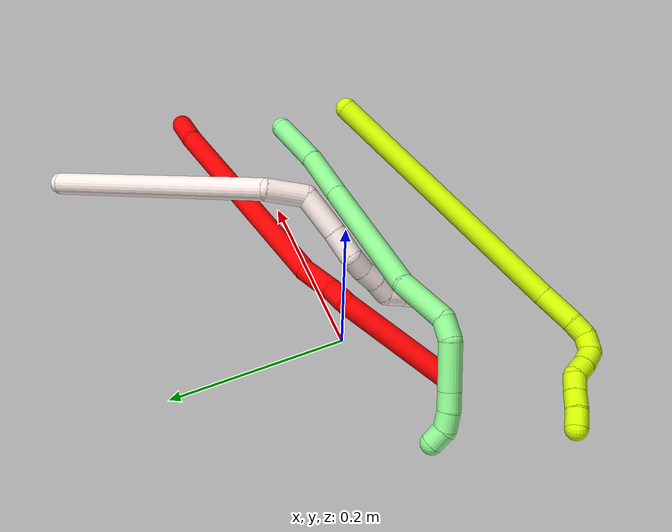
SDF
<sdf version="1.7">
 <world name="default">
  <model name="2">
   <static>0</static>
   <link name="2">
    <collision name="collision-cylinder-e_1_1_4">
     <pose>-0.007157 -0.010396 -0.017188 2.59763 -0.34228 -1.10957</pose>
     <geometry><cylinder><radius>0.0125</radius><length>0.042649</length></cylinder></geometry>
     <surface>
      <friction><ode><mu>1.16</mu><mu2>1.16</mu2><slip1>0</slip1><slip2>0</slip2></ode></friction>
      <contact><ode><kp>1e+06</kp><kd>1</kd><max_vel>0</max_vel><min_depth>0.001</min_depth></ode></contact>
     </surface>
    </collision>
    <visual name="visual-cylinder-e_1_1_4">
     <pose>-0.007157 -0.010396 -0.017188 2.59763 -0.34228 -1.10957</pose>
     <geometry><cylinder><radius>0.0125</radius><length>0.042649</length></cylinder></geometry>
     <material><ambient>1 0 0 1</ambient></material>
    </visual>
    <collision name="collision-cylinder-e_2_4_5">
     <pose>-0.084822 -0.04729 -0.132246 2.87718 -0.607624 -2.33927</pose>
     <geometry><cylinder><radius>0.0125</radius><length>0.246996</length></cylinder></geometry>
     <surface>
      <friction><ode><mu>1.16</mu><mu2>1.16</mu2><slip1>0</slip1><slip2>0</slip2></ode></friction>
      <contact><ode><kp>1e+06</kp><kd>1</kd><max_vel>0</max_vel><min_depth>0.001</min_depth></ode></contact>
     </surface>
    </collision>
    <visual name="visual-cylinder-e_2_4_5">
     <pose>-0.084822 -0.04729 -0.132246 2.87718 -0.607624 -2.33927</pose>
     <geometry><cylinder><radius>0.0125</radius><length>0.246996</length></cylinder></geometry>
     <material><ambient>1 0 0 1</ambient></material>
    </visual>
    <collision name="collision-cylinder-e_3_5_6">
     <pose>-0.163939 -0.078434 -0.251462 2.92735 -0.375393 -2.11127</pose>
     <geometry><cylinder><radius>0.0125</radius><length>0.046964</length></cylinder></geometry>
     <surface>
      <friction><ode><mu>1.16</mu><mu2>1.16</mu2><slip1>0</slip1><slip2>0</slip2></ode></friction>
      <contact><ode><kp>1e+06</kp><kd>1</kd><max_vel>0</max_vel><min_depth>0.001</min_depth></ode></contact>
     </surface>
    </collision>
    <visual name="visual-cylinder-e_3_5_6">
     <pose>-0.163939 -0.078434 -0.251462 2.92735 -0.375393 -2.11127</pose>
     <geometry><cylinder><radius>0.0125</radius><length>0.046964</length></cylinder></geometry>
     <material><ambient>1 0 0 1</ambient></material>
    </visual>
    <collision name="collision-cylinder-e_4_6_7">
     <pose>-0.177444 -0.088381 -0.285837 2.75499 -0.334954 -1.42477</pose>
     <geometry><cylinder><radius>0.0125</radius><length>0.029786</length></cylinder></geometry>
     <surface>
      <friction><ode><mu>1.16</mu><mu2>1.16</mu2><slip1>0</slip1><slip2>0</slip2></ode></friction>
      <contact><ode><kp>1e+06</kp><kd>1</kd><max_vel>0</max_vel><min_depth>0.001</min_depth></ode></contact>
     </surface>
    </collision>
    <visual name="visual-cylinder-e_4_6_7">
     <pose>-0.177444 -0.088381 -0.285837 2.75499 -0.334954 -1.42477</pose>
     <geometry><cylinder><radius>0.0125</radius><length>0.029786</length></cylinder></geometry>
     <material><ambient>1 0 0 1</ambient></material>
    </visual>
    <collision name="collision-cylinder-e_5_7_2">
     <pose>-0.224395 -0.081312 -0.349271 -2.90089 -0.680967 2.4837</pose>
     <geometry><cylinder><radius>0.0125</radius><length>0.133604</length></cylinder></geometry>
     <surface>
      <friction><ode><mu>1.16</mu><mu2>1.16</mu2><slip1>0</slip1><slip2>0</slip2></ode></friction>
      <contact><ode><kp>1e+06</kp><kd>1</kd><max_vel>0</max_vel><min_depth>0.001</min_depth></ode></contact>
     </surface>
    </collision>
    <visual name="visual-cylinder-e_5_7_2">
     <pose>-0.224395 -0.081312 -0.349271 -2.90089 -0.680967 2.4837</pose>
     <geometry><cylinder><radius>0.0125</radius><length>0.133604</length></cylinder></geometry>
     <material><ambient>1 0 0 1</ambient></material>
    </visual>
    <collision name="collision-sphere-2">
     <pose>-0.266449 -0.068939 -0.399677 0 -0 0</pose>
     <geometry><sphere><radius>0.0125</radius></sphere></geometry>
     <surface>
      <friction><ode><mu>1.16</mu><mu2>1.16</mu2><slip1>0</slip1><slip2>0</slip2></ode></friction>
      <contact><ode><kp>1e+06</kp><kd>1</kd><max_vel>0</max_vel><min_depth>0.001</min_depth></ode></contact>
     </surface>
    </collision>
    <visual name="visual-sphere-2">
     <pose>-0.266449 -0.068939 -0.399677 0 -0 0</pose>
     <geometry><sphere><radius>0.0125</radius></sphere></geometry>
     <material><ambient>1 0 0 1</ambient></material>
    </visual>
    <collision name="collision-sphere-7">
     <pose>-0.18234 -0.093685 -0.298864 0 -0 0</pose>
     <geometry><sphere><radius>0.0125</radius></sphere></geometry>
     <surface>
      <friction><ode><mu>1.16</mu><mu2>1.16</mu2><slip1>0</slip1><slip2>0</slip2></ode></friction>
      <contact><ode><kp>1e+06</kp><kd>1</kd><max_vel>0</max_vel><min_depth>0.001</min_depth></ode></contact>
     </surface>
    </collision>
    <visual name="visual-sphere-7">
     <pose>-0.18234 -0.093685 -0.298864 0 -0 0</pose>
     <geometry><sphere><radius>0.0125</radius></sphere></geometry>
     <material><ambient>1 0 0 1</ambient></material>
    </visual>
    <collision name="collision-sphere-6">
     <pose>-0.172548 -0.083078 -0.27281 0 -0 0</pose>
     <geometry><sphere><radius>0.0125</radius></sphere></geometry>
     <surface>
      <friction><ode><mu>1.16</mu><mu2>1.16</mu2><slip1>0</slip1><slip2>0</slip2></ode></friction>
      <contact><ode><kp>1e+06</kp><kd>1</kd><max_vel>0</max_vel><min_depth>0.001</min_depth></ode></contact>
     </surface>
    </collision>
    <visual name="visual-sphere-6">
     <pose>-0.172548 -0.083078 -0.27281 0 -0 0</pose>
     <geometry><sphere><radius>0.0125</radius></sphere></geometry>
     <material><ambient>1 0 0 1</ambient></material>
    </visual>
    <collision name="collision-sphere-5">
     <pose>-0.15533 -0.073789 -0.230115 0 -0 0</pose>
     <geometry><sphere><radius>0.0125</radius></sphere></geometry>
     <surface>
      <friction><ode><mu>1.16</mu><mu2>1.16</mu2><slip1>0</slip1><slip2>0</slip2></ode></friction>
      <contact><ode><kp>1e+06</kp><kd>1</kd><max_vel>0</max_vel><min_depth>0.001</min_depth></ode></contact>
     </surface>
    </collision>
    <visual name="visual-sphere-5">
     <pose>-0.15533 -0.073789 -0.230115 0 -0 0</pose>
     <geometry><sphere><radius>0.0125</radius></sphere></geometry>
     <material><ambient>1 0 0 1</ambient></material>
    </visual>
    <collision name="collision-sphere-1">
     <geometry><sphere><radius>0.0125</radius></sphere></geometry>
     <surface>
      <friction><ode><mu>1.16</mu><mu2>1.16</mu2><slip1>0</slip1><slip2>0</slip2></ode></friction>
      <contact><ode><kp>1e+06</kp><kd>1</kd><max_vel>0</max_vel><min_depth>0.001</min_depth></ode></contact>
     </surface>
    </collision>
    <visual name="visual-sphere-1">
     <geometry><sphere><radius>0.0125</radius></sphere></geometry>
     <material><ambient>1 0 0 1</ambient></material>
    </visual>
    <collision name="collision-sphere-4">
     <pose>-0.014315 -0.020792 -0.034377 0 -0 0</pose>
     <geometry><sphere><radius>0.0125</radius></sphere></geometry>
     <surface>
      <friction><ode><mu>1.16</mu><mu2>1.16</mu2><slip1>0</slip1><slip2>0</slip2></ode></friction>
      <contact><ode><kp>1e+06</kp><kd>1</kd><max_vel>0</max_vel><min_depth>0.001</min_depth></ode></contact>
     </surface>
    </collision>
    <visual name="visual-sphere-4">
     <pose>-0.014315 -0.020792 -0.034377 0 -0 0</pose>
     <geometry><sphere><radius>0.0125</radius></sphere></geometry>
     <material><ambient>1 0 0 1</ambient></material>
    </visual>
    <inertial>
     <pose>-0.128441 -0.058607 -0.20077 0 -0 0</pose>
     <mass>0.5</mass>
     <inertia>
      <ixx>-0.001538</ixx>
      <ixy>0</ixy>
      <ixz>0</ixz>
      <iyy>0.00049</iyy>
      <iyz>0</iyz>
      <izz>0.001068</izz>
     </inertia>
    </inertial>
   </link>
   <pose>0.369755 0.067125 0.011614 -2.41685 -0.912329 -0.140713</pose>
  </model>
  <model name="11">
   <static>0</static>
   <link name="11">
    <collision name="collision-cylinder-e_1_1_4">
     <pose>-0.102135 -0.060394 0.067195 0.73215 -0.846562 -0.342039</pose>
     <geometry><cylinder><radius>0.0125</radius><length>0.27272</length></cylinder></geometry>
     <surface>
      <friction><ode><mu>1.16</mu><mu2>1.16</mu2><slip1>0</slip1><slip2>0</slip2></ode></friction>
      <contact><ode><kp>1e+06</kp><kd>1</kd><max_vel>0</max_vel><min_depth>0.001</min_depth></ode></contact>
     </surface>
    </collision>
    <visual name="visual-cylinder-e_1_1_4">
     <pose>-0.102135 -0.060394 0.067195 0.73215 -0.846562 -0.342039</pose>
     <geometry><cylinder><radius>0.0125</radius><length>0.27272</length></cylinder></geometry>
     <material><ambient>1 0.933333 0.909804 1</ambient></material>
    </visual>
    <collision name="collision-cylinder-e_2_4_5">
     <pose>-0.222437 -0.133238 0.13227 1.73935 -0.963361 -1.10887</pose>
     <geometry><cylinder><radius>0.0125</radius><length>0.04425</length></cylinder></geometry>
     <surface>
      <friction><ode><mu>1.16</mu><mu2>1.16</mu2><slip1>0</slip1><slip2>0</slip2></ode></friction>
      <contact><ode><kp>1e+06</kp><kd>1</kd><max_vel>0</max_vel><min_depth>0.001</min_depth></ode></contact>
     </surface>
    </collision>
    <visual name="visual-cylinder-e_2_4_5">
     <pose>-0.222437 -0.133238 0.13227 1.73935 -0.963361 -1.10887</pose>
     <geometry><cylinder><radius>0.0125</radius><length>0.04425</length></cylinder></geometry>
     <material><ambient>1 0.933333 0.909804 1</ambient></material>
    </visual>
    <collision name="collision-cylinder-e_3_5_6">
     <pose>-0.264361 -0.141187 0.128052 -2.00749 -1.36474 1.81216</pose>
     <geometry><cylinder><radius>0.0125</radius><length>0.048541</length></cylinder></geometry>
     <surface>
      <friction><ode><mu>1.16</mu><mu2>1.16</mu2><slip1>0</slip1><slip2>0</slip2></ode></friction>
      <contact><ode><kp>1e+06</kp><kd>1</kd><max_vel>0</max_vel><min_depth>0.001</min_depth></ode></contact>
     </surface>
    </collision>
    <visual name="visual-cylinder-e_3_5_6">
     <pose>-0.264361 -0.141187 0.128052 -2.00749 -1.36474 1.81216</pose>
     <geometry><cylinder><radius>0.0125</radius><length>0.048541</length></cylinder></geometry>
     <material><ambient>1 0.933333 0.909804 1</ambient></material>
    </visual>
    <collision name="collision-cylinder-e_4_6_7">
     <pose>-0.303215 -0.13287 0.12465 -1.8994 -1.30974 1.64134</pose>
     <geometry><cylinder><radius>0.0125</radius><length>0.031253</length></cylinder></geometry>
     <surface>
      <friction><ode><mu>1.16</mu><mu2>1.16</mu2><slip1>0</slip1><slip2>0</slip2></ode></friction>
      <contact><ode><kp>1e+06</kp><kd>1</kd><max_vel>0</max_vel><min_depth>0.001</min_depth></ode></contact>
     </surface>
    </collision>
    <visual name="visual-cylinder-e_4_6_7">
     <pose>-0.303215 -0.13287 0.12465 -1.8994 -1.30974 1.64134</pose>
     <geometry><cylinder><radius>0.0125</radius><length>0.031253</length></cylinder></geometry>
     <material><ambient>1 0.933333 0.909804 1</ambient></material>
    </visual>
    <collision name="collision-cylinder-e_5_7_8">
     <pose>-0.327435 -0.129065 0.117153 3.13969 -0.974243 -3.138</pose>
     <geometry><cylinder><radius>0.0125</radius><length>0.022055</length></cylinder></geometry>
     <surface>
      <friction><ode><mu>1.16</mu><mu2>1.16</mu2><slip1>0</slip1><slip2>0</slip2></ode></friction>
      <contact><ode><kp>1e+06</kp><kd>1</kd><max_vel>0</max_vel><min_depth>0.001</min_depth></ode></contact>
     </surface>
    </collision>
    <visual name="visual-cylinder-e_5_7_8">
     <pose>-0.327435 -0.129065 0.117153 3.13969 -0.974243 -3.138</pose>
     <geometry><cylinder><radius>0.0125</radius><length>0.022055</length></cylinder></geometry>
     <material><ambient>1 0.933333 0.909804 1</ambient></material>
    </visual>
    <collision name="collision-cylinder-e_6_8_9">
     <pose>-0.345642 -0.130373 0.105875 2.89189 -1.04716 -2.71347</pose>
     <geometry><cylinder><radius>0.0125</radius><length>0.02098</length></cylinder></geometry>
     <surface>
      <friction><ode><mu>1.16</mu><mu2>1.16</mu2><slip1>0</slip1><slip2>0</slip2></ode></friction>
      <contact><ode><kp>1e+06</kp><kd>1</kd><max_vel>0</max_vel><min_depth>0.001</min_depth></ode></contact>
     </surface>
    </collision>
    <visual name="visual-cylinder-e_6_8_9">
     <pose>-0.345642 -0.130373 0.105875 2.89189 -1.04716 -2.71347</pose>
     <geometry><cylinder><radius>0.0125</radius><length>0.02098</length></cylinder></geometry>
     <material><ambient>1 0.933333 0.909804 1</ambient></material>
    </visual>
    <collision name="collision-cylinder-e_7_9_10">
     <pose>-0.363211 -0.131754 0.095454 3.12561 -1.00912 -3.11264</pose>
     <geometry><cylinder><radius>0.0125</radius><length>0.020051</length></cylinder></geometry>
     <surface>
      <friction><ode><mu>1.16</mu><mu2>1.16</mu2><slip1>0</slip1><slip2>0</slip2></ode></friction>
      <contact><ode><kp>1e+06</kp><kd>1</kd><max_vel>0</max_vel><min_depth>0.001</min_depth></ode></contact>
     </surface>
    </collision>
    <visual name="visual-cylinder-e_7_9_10">
     <pose>-0.363211 -0.131754 0.095454 3.12561 -1.00912 -3.11264</pose>
     <geometry><cylinder><radius>0.0125</radius><length>0.020051</length></cylinder></geometry>
     <material><ambient>1 0.933333 0.909804 1</ambient></material>
    </visual>
    <collision name="collision-cylinder-e_8_10_11">
     <pose>-0.378939 -0.138215 0.087313 1.98492 -0.804951 -1.15576</pose>
     <geometry><cylinder><radius>0.0125</radius><length>0.020096</length></cylinder></geometry>
     <surface>
      <friction><ode><mu>1.16</mu><mu2>1.16</mu2><slip1>0</slip1><slip2>0</slip2></ode></friction>
      <contact><ode><kp>1e+06</kp><kd>1</kd><max_vel>0</max_vel><min_depth>0.001</min_depth></ode></contact>
     </surface>
    </collision>
    <visual name="visual-cylinder-e_8_10_11">
     <pose>-0.378939 -0.138215 0.087313 1.98492 -0.804951 -1.15576</pose>
     <geometry><cylinder><radius>0.0125</radius><length>0.020096</length></cylinder></geometry>
     <material><ambient>1 0.933333 0.909804 1</ambient></material>
    </visual>
    <collision name="collision-cylinder-e_9_11_2">
     <pose>-0.393424 -0.150669 0.08117 2.0733 -0.807065 -1.25046</pose>
     <geometry><cylinder><radius>0.0125</radius><length>0.020054</length></cylinder></geometry>
     <surface>
      <friction><ode><mu>1.16</mu><mu2>1.16</mu2><slip1>0</slip1><slip2>0</slip2></ode></friction>
      <contact><ode><kp>1e+06</kp><kd>1</kd><max_vel>0</max_vel><min_depth>0.001</min_depth></ode></contact>
     </surface>
    </collision>
    <visual name="visual-cylinder-e_9_11_2">
     <pose>-0.393424 -0.150669 0.08117 2.0733 -0.807065 -1.25046</pose>
     <geometry><cylinder><radius>0.0125</radius><length>0.020054</length></cylinder></geometry>
     <material><ambient>1 0.933333 0.909804 1</ambient></material>
    </visual>
    <collision name="collision-sphere-2">
     <pose>-0.400666 -0.156747 0.07783 0 -0 0</pose>
     <geometry><sphere><radius>0.0125</radius></sphere></geometry>
     <surface>
      <friction><ode><mu>1.16</mu><mu2>1.16</mu2><slip1>0</slip1><slip2>0</slip2></ode></friction>
      <contact><ode><kp>1e+06</kp><kd>1</kd><max_vel>0</max_vel><min_depth>0.001</min_depth></ode></contact>
     </surface>
    </collision>
    <visual name="visual-sphere-2">
     <pose>-0.400666 -0.156747 0.07783 0 -0 0</pose>
     <geometry><sphere><radius>0.0125</radius></sphere></geometry>
     <material><ambient>1 0.933333 0.909804 1</ambient></material>
    </visual>
    <collision name="collision-sphere-11">
     <pose>-0.386181 -0.144591 0.08451 0 -0 0</pose>
     <geometry><sphere><radius>0.0125</radius></sphere></geometry>
     <surface>
      <friction><ode><mu>1.16</mu><mu2>1.16</mu2><slip1>0</slip1><slip2>0</slip2></ode></friction>
      <contact><ode><kp>1e+06</kp><kd>1</kd><max_vel>0</max_vel><min_depth>0.001</min_depth></ode></contact>
     </surface>
    </collision>
    <visual name="visual-sphere-11">
     <pose>-0.386181 -0.144591 0.08451 0 -0 0</pose>
     <geometry><sphere><radius>0.0125</radius></sphere></geometry>
     <material><ambient>1 0.933333 0.909804 1</ambient></material>
    </visual>
    <collision name="collision-sphere-10">
     <pose>-0.371696 -0.131839 0.090115 0 -0 0</pose>
     <geometry><sphere><radius>0.0125</radius></sphere></geometry>
     <surface>
      <friction><ode><mu>1.16</mu><mu2>1.16</mu2><slip1>0</slip1><slip2>0</slip2></ode></friction>
      <contact><ode><kp>1e+06</kp><kd>1</kd><max_vel>0</max_vel><min_depth>0.001</min_depth></ode></contact>
     </surface>
    </collision>
    <visual name="visual-sphere-10">
     <pose>-0.371696 -0.131839 0.090115 0 -0 0</pose>
     <geometry><sphere><radius>0.0125</radius></sphere></geometry>
     <material><ambient>1 0.933333 0.909804 1</ambient></material>
    </visual>
    <collision name="collision-sphere-9">
     <pose>-0.354726 -0.131669 0.100793 0 -0 0</pose>
     <geometry><sphere><radius>0.0125</radius></sphere></geometry>
     <surface>
      <friction><ode><mu>1.16</mu><mu2>1.16</mu2><slip1>0</slip1><slip2>0</slip2></ode></friction>
      <contact><ode><kp>1e+06</kp><kd>1</kd><max_vel>0</max_vel><min_depth>0.001</min_depth></ode></contact>
     </surface>
    </collision>
    <visual name="visual-sphere-9">
     <pose>-0.354726 -0.131669 0.100793 0 -0 0</pose>
     <geometry><sphere><radius>0.0125</radius></sphere></geometry>
     <material><ambient>1 0.933333 0.909804 1</ambient></material>
    </visual>
    <collision name="collision-sphere-4">
     <pose>-0.204269 -0.120789 0.134389 0 -0 0</pose>
     <geometry><sphere><radius>0.0125</radius></sphere></geometry>
     <surface>
      <friction><ode><mu>1.16</mu><mu2>1.16</mu2><slip1>0</slip1><slip2>0</slip2></ode></friction>
      <contact><ode><kp>1e+06</kp><kd>1</kd><max_vel>0</max_vel><min_depth>0.001</min_depth></ode></contact>
     </surface>
    </collision>
    <visual name="visual-sphere-4">
     <pose>-0.204269 -0.120789 0.134389 0 -0 0</pose>
     <geometry><sphere><radius>0.0125</radius></sphere></geometry>
     <material><ambient>1 0.933333 0.909804 1</ambient></material>
    </visual>
    <collision name="collision-sphere-1">
     <geometry><sphere><radius>0.0125</radius></sphere></geometry>
     <surface>
      <friction><ode><mu>1.16</mu><mu2>1.16</mu2><slip1>0</slip1><slip2>0</slip2></ode></friction>
      <contact><ode><kp>1e+06</kp><kd>1</kd><max_vel>0</max_vel><min_depth>0.001</min_depth></ode></contact>
     </surface>
    </collision>
    <visual name="visual-sphere-1">
     <geometry><sphere><radius>0.0125</radius></sphere></geometry>
     <material><ambient>1 0.933333 0.909804 1</ambient></material>
    </visual>
    <collision name="collision-sphere-8">
     <pose>-0.336557 -0.129076 0.110958 0 -0 0</pose>
     <geometry><sphere><radius>0.0125</radius></sphere></geometry>
     <surface>
      <friction><ode><mu>1.16</mu><mu2>1.16</mu2><slip1>0</slip1><slip2>0</slip2></ode></friction>
      <contact><ode><kp>1e+06</kp><kd>1</kd><max_vel>0</max_vel><min_depth>0.001</min_depth></ode></contact>
     </surface>
    </collision>
    <visual name="visual-sphere-8">
     <pose>-0.336557 -0.129076 0.110958 0 -0 0</pose>
     <geometry><sphere><radius>0.0125</radius></sphere></geometry>
     <material><ambient>1 0.933333 0.909804 1</ambient></material>
    </visual>
    <collision name="collision-sphere-5">
     <pose>-0.240604 -0.145687 0.130152 0 -0 0</pose>
     <geometry><sphere><radius>0.0125</radius></sphere></geometry>
     <surface>
      <friction><ode><mu>1.16</mu><mu2>1.16</mu2><slip1>0</slip1><slip2>0</slip2></ode></friction>
      <contact><ode><kp>1e+06</kp><kd>1</kd><max_vel>0</max_vel><min_depth>0.001</min_depth></ode></contact>
     </surface>
    </collision>
    <visual name="visual-sphere-5">
     <pose>-0.240604 -0.145687 0.130152 0 -0 0</pose>
     <geometry><sphere><radius>0.0125</radius></sphere></geometry>
     <material><ambient>1 0.933333 0.909804 1</ambient></material>
    </visual>
    <collision name="collision-sphere-6">
     <pose>-0.288118 -0.136688 0.125952 0 -0 0</pose>
     <geometry><sphere><radius>0.0125</radius></sphere></geometry>
     <surface>
      <friction><ode><mu>1.16</mu><mu2>1.16</mu2><slip1>0</slip1><slip2>0</slip2></ode></friction>
      <contact><ode><kp>1e+06</kp><kd>1</kd><max_vel>0</max_vel><min_depth>0.001</min_depth></ode></contact>
     </surface>
    </collision>
    <visual name="visual-sphere-6">
     <pose>-0.288118 -0.136688 0.125952 0 -0 0</pose>
     <geometry><sphere><radius>0.0125</radius></sphere></geometry>
     <material><ambient>1 0.933333 0.909804 1</ambient></material>
    </visual>
    <collision name="collision-sphere-7">
     <pose>-0.318312 -0.129053 0.123348 0 -0 0</pose>
     <geometry><sphere><radius>0.0125</radius></sphere></geometry>
     <surface>
      <friction><ode><mu>1.16</mu><mu2>1.16</mu2><slip1>0</slip1><slip2>0</slip2></ode></friction>
      <contact><ode><kp>1e+06</kp><kd>1</kd><max_vel>0</max_vel><min_depth>0.001</min_depth></ode></contact>
     </surface>
    </collision>
    <visual name="visual-sphere-7">
     <pose>-0.318312 -0.129053 0.123348 0 -0 0</pose>
     <geometry><sphere><radius>0.0125</radius></sphere></geometry>
     <material><ambient>1 0.933333 0.909804 1</ambient></material>
    </visual>
    <inertial>
     <pose>-0.194533 -0.09479 0.088782 0 -0 0</pose>
     <mass>0.5</mass>
     <inertia>
      <ixx>0.000649</ixx>
      <ixy>0</ixy>
      <ixz>0</ixz>
      <iyy>0.00111</iyy>
      <iyz>0</iyz>
      <izz>0.002066</izz>
     </inertia>
    </inertial>
   </link>
   <pose>0.289945 0.235721 0.056816 -0.256229 -0.326474 0.537629</pose>
  </model>
  <model name="13">
   <static>0</static>
   <link name="13">
    <collision name="collision-cylinder-e_1_1_4">
     <pose>-0.030874 -0.007097 -0.016965 2.74538 -1.0336 -2.46251</pose>
     <geometry><cylinder><radius>0.0125</radius><length>0.071872</length></cylinder></geometry>
     <surface>
      <friction><ode><mu>1.16</mu><mu2>1.16</mu2><slip1>0</slip1><slip2>0</slip2></ode></friction>
      <contact><ode><kp>1e+06</kp><kd>1</kd><max_vel>0</max_vel><min_depth>0.001</min_depth></ode></contact>
     </surface>
    </collision>
    <visual name="visual-cylinder-e_1_1_4">
     <pose>-0.030874 -0.007097 -0.016965 2.74538 -1.0336 -2.46251</pose>
     <geometry><cylinder><radius>0.0125</radius><length>0.071872</length></cylinder></geometry>
     <material><ambient>0.564706 0.984314 0.572549 1</ambient></material>
    </visual>
    <collision name="collision-cylinder-e_2_4_5">
     <pose>-0.090274 -0.017324 -0.051392 2.96424 -1.01442 -2.82429</pose>
     <geometry><cylinder><radius>0.0125</radius><length>0.067185</length></cylinder></geometry>
     <surface>
      <friction><ode><mu>1.16</mu><mu2>1.16</mu2><slip1>0</slip1><slip2>0</slip2></ode></friction>
      <contact><ode><kp>1e+06</kp><kd>1</kd><max_vel>0</max_vel><min_depth>0.001</min_depth></ode></contact>
     </surface>
    </collision>
    <visual name="visual-cylinder-e_2_4_5">
     <pose>-0.090274 -0.017324 -0.051392 2.96424 -1.01442 -2.82429</pose>
     <geometry><cylinder><radius>0.0125</radius><length>0.067185</length></cylinder></geometry>
     <material><ambient>0.564706 0.984314 0.572549 1</ambient></material>
    </visual>
    <collision name="collision-cylinder-e_3_5_6">
     <pose>-0.190631 -0.025504 -0.107209 3.01067 -1.07677 -2.92295</pose>
     <geometry><cylinder><radius>0.0125</radius><length>0.163172</length></cylinder></geometry>
     <surface>
      <friction><ode><mu>1.16</mu><mu2>1.16</mu2><slip1>0</slip1><slip2>0</slip2></ode></friction>
      <contact><ode><kp>1e+06</kp><kd>1</kd><max_vel>0</max_vel><min_depth>0.001</min_depth></ode></contact>
     </surface>
    </collision>
    <visual name="visual-cylinder-e_3_5_6">
     <pose>-0.190631 -0.025504 -0.107209 3.01067 -1.07677 -2.92295</pose>
     <geometry><cylinder><radius>0.0125</radius><length>0.163172</length></cylinder></geometry>
     <material><ambient>0.564706 0.984314 0.572549 1</ambient></material>
    </visual>
    <collision name="collision-cylinder-e_4_6_7">
     <pose>-0.287568 -0.040756 -0.159703 2.51657 -0.963763 -2.03483</pose>
     <geometry><cylinder><radius>0.0125</radius><length>0.061132</length></cylinder></geometry>
     <surface>
      <friction><ode><mu>1.16</mu><mu2>1.16</mu2><slip1>0</slip1><slip2>0</slip2></ode></friction>
      <contact><ode><kp>1e+06</kp><kd>1</kd><max_vel>0</max_vel><min_depth>0.001</min_depth></ode></contact>
     </surface>
    </collision>
    <visual name="visual-cylinder-e_4_6_7">
     <pose>-0.287568 -0.040756 -0.159703 2.51657 -0.963763 -2.03483</pose>
     <geometry><cylinder><radius>0.0125</radius><length>0.061132</length></cylinder></geometry>
     <material><ambient>0.564706 0.984314 0.572549 1</ambient></material>
    </visual>
    <collision name="collision-cylinder-e_5_7_8">
     <pose>-0.319569 -0.051054 -0.183632 3.13187 -0.613716 -3.11091</pose>
     <geometry><cylinder><radius>0.0125</radius><length>0.023951</length></cylinder></geometry>
     <surface>
      <friction><ode><mu>1.16</mu><mu2>1.16</mu2><slip1>0</slip1><slip2>0</slip2></ode></friction>
      <contact><ode><kp>1e+06</kp><kd>1</kd><max_vel>0</max_vel><min_depth>0.001</min_depth></ode></contact>
     </surface>
    </collision>
    <visual name="visual-cylinder-e_5_7_8">
     <pose>-0.319569 -0.051054 -0.183632 3.13187 -0.613716 -3.11091</pose>
     <geometry><cylinder><radius>0.0125</radius><length>0.023951</length></cylinder></geometry>
     <material><ambient>0.564706 0.984314 0.572549 1</ambient></material>
    </visual>
    <collision name="collision-cylinder-e_6_8_9">
     <pose>-0.328624 -0.049464 -0.219126 -3.07614 -0.083561 1.81288</pose>
     <geometry><cylinder><radius>0.0125</radius><length>0.051699</length></cylinder></geometry>
     <surface>
      <friction><ode><mu>1.16</mu><mu2>1.16</mu2><slip1>0</slip1><slip2>0</slip2></ode></friction>
      <contact><ode><kp>1e+06</kp><kd>1</kd><max_vel>0</max_vel><min_depth>0.001</min_depth></ode></contact>
     </surface>
    </collision>
    <visual name="visual-cylinder-e_6_8_9">
     <pose>-0.328624 -0.049464 -0.219126 -3.07614 -0.083561 1.81288</pose>
     <geometry><cylinder><radius>0.0125</radius><length>0.051699</length></cylinder></geometry>
     <material><ambient>0.564706 0.984314 0.572549 1</ambient></material>
    </visual>
    <collision name="collision-cylinder-e_7_9_10">
     <pose>-0.332013 -0.046848 -0.255118 -3.05133 -0.118652 1.84138</pose>
     <geometry><cylinder><radius>0.0125</radius><length>0.020806</length></cylinder></geometry>
     <surface>
      <friction><ode><mu>1.16</mu><mu2>1.16</mu2><slip1>0</slip1><slip2>0</slip2></ode></friction>
      <contact><ode><kp>1e+06</kp><kd>1</kd><max_vel>0</max_vel><min_depth>0.001</min_depth></ode></contact>
     </surface>
    </collision>
    <visual name="visual-cylinder-e_7_9_10">
     <pose>-0.332013 -0.046848 -0.255118 -3.05133 -0.118652 1.84138</pose>
     <geometry><cylinder><radius>0.0125</radius><length>0.020806</length></cylinder></geometry>
     <material><ambient>0.564706 0.984314 0.572549 1</ambient></material>
    </visual>
    <collision name="collision-cylinder-e_8_10_11">
     <pose>-0.332971 -0.043776 -0.27521 -2.92657 0.027192 -0.250645</pose>
     <geometry><cylinder><radius>0.0125</radius><length>0.020078</length></cylinder></geometry>
     <surface>
      <friction><ode><mu>1.16</mu><mu2>1.16</mu2><slip1>0</slip1><slip2>0</slip2></ode></friction>
      <contact><ode><kp>1e+06</kp><kd>1</kd><max_vel>0</max_vel><min_depth>0.001</min_depth></ode></contact>
     </surface>
    </collision>
    <visual name="visual-cylinder-e_8_10_11">
     <pose>-0.332971 -0.043776 -0.27521 -2.92657 0.027192 -0.250645</pose>
     <geometry><cylinder><radius>0.0125</radius><length>0.020078</length></cylinder></geometry>
     <material><ambient>0.564706 0.984314 0.572549 1</ambient></material>
    </visual>
    <collision name="collision-cylinder-e_9_11_2">
     <pose>-0.328898 -0.036262 -0.292614 -2.52624 0.387716 -1.10685</pose>
     <geometry><cylinder><radius>0.0125</radius><length>0.020105</length></cylinder></geometry>
     <surface>
      <friction><ode><mu>1.16</mu><mu2>1.16</mu2><slip1>0</slip1><slip2>0</slip2></ode></friction>
      <contact><ode><kp>1e+06</kp><kd>1</kd><max_vel>0</max_vel><min_depth>0.001</min_depth></ode></contact>
     </surface>
    </collision>
    <visual name="visual-cylinder-e_9_11_2">
     <pose>-0.328898 -0.036262 -0.292614 -2.52624 0.387716 -1.10685</pose>
     <geometry><cylinder><radius>0.0125</radius><length>0.020105</length></cylinder></geometry>
     <material><ambient>0.564706 0.984314 0.572549 1</ambient></material>
    </visual>
    <collision name="collision-sphere-2">
     <pose>-0.325097 -0.03089 -0.300213 0 -0 0</pose>
     <geometry><sphere><radius>0.0125</radius></sphere></geometry>
     <surface>
      <friction><ode><mu>1.16</mu><mu2>1.16</mu2><slip1>0</slip1><slip2>0</slip2></ode></friction>
      <contact><ode><kp>1e+06</kp><kd>1</kd><max_vel>0</max_vel><min_depth>0.001</min_depth></ode></contact>
     </surface>
    </collision>
    <visual name="visual-sphere-2">
     <pose>-0.325097 -0.03089 -0.300213 0 -0 0</pose>
     <geometry><sphere><radius>0.0125</radius></sphere></geometry>
     <material><ambient>0.564706 0.984314 0.572549 1</ambient></material>
    </visual>
    <collision name="collision-sphere-11">
     <pose>-0.332698 -0.041634 -0.285014 0 -0 0</pose>
     <geometry><sphere><radius>0.0125</radius></sphere></geometry>
     <surface>
      <friction><ode><mu>1.16</mu><mu2>1.16</mu2><slip1>0</slip1><slip2>0</slip2></ode></friction>
      <contact><ode><kp>1e+06</kp><kd>1</kd><max_vel>0</max_vel><min_depth>0.001</min_depth></ode></contact>
     </surface>
    </collision>
    <visual name="visual-sphere-11">
     <pose>-0.332698 -0.041634 -0.285014 0 -0 0</pose>
     <geometry><sphere><radius>0.0125</radius></sphere></geometry>
     <material><ambient>0.564706 0.984314 0.572549 1</ambient></material>
    </visual>
    <collision name="collision-sphere-10">
     <pose>-0.333244 -0.045917 -0.265406 0 -0 0</pose>
     <geometry><sphere><radius>0.0125</radius></sphere></geometry>
     <surface>
      <friction><ode><mu>1.16</mu><mu2>1.16</mu2><slip1>0</slip1><slip2>0</slip2></ode></friction>
      <contact><ode><kp>1e+06</kp><kd>1</kd><max_vel>0</max_vel><min_depth>0.001</min_depth></ode></contact>
     </surface>
    </collision>
    <visual name="visual-sphere-10">
     <pose>-0.333244 -0.045917 -0.265406 0 -0 0</pose>
     <geometry><sphere><radius>0.0125</radius></sphere></geometry>
     <material><ambient>0.564706 0.984314 0.572549 1</ambient></material>
    </visual>
    <collision name="collision-sphere-9">
     <pose>-0.330781 -0.047779 -0.244831 0 -0 0</pose>
     <geometry><sphere><radius>0.0125</radius></sphere></geometry>
     <surface>
      <friction><ode><mu>1.16</mu><mu2>1.16</mu2><slip1>0</slip1><slip2>0</slip2></ode></friction>
      <contact><ode><kp>1e+06</kp><kd>1</kd><max_vel>0</max_vel><min_depth>0.001</min_depth></ode></contact>
     </surface>
    </collision>
    <visual name="visual-sphere-9">
     <pose>-0.330781 -0.047779 -0.244831 0 -0 0</pose>
     <geometry><sphere><radius>0.0125</radius></sphere></geometry>
     <material><ambient>0.564706 0.984314 0.572549 1</ambient></material>
    </visual>
    <collision name="collision-sphere-4">
     <pose>-0.061748 -0.014194 -0.033929 0 -0 0</pose>
     <geometry><sphere><radius>0.0125</radius></sphere></geometry>
     <surface>
      <friction><ode><mu>1.16</mu><mu2>1.16</mu2><slip1>0</slip1><slip2>0</slip2></ode></friction>
      <contact><ode><kp>1e+06</kp><kd>1</kd><max_vel>0</max_vel><min_depth>0.001</min_depth></ode></contact>
     </surface>
    </collision>
    <visual name="visual-sphere-4">
     <pose>-0.061748 -0.014194 -0.033929 0 -0 0</pose>
     <geometry><sphere><radius>0.0125</radius></sphere></geometry>
     <material><ambient>0.564706 0.984314 0.572549 1</ambient></material>
    </visual>
    <collision name="collision-sphere-1">
     <geometry><sphere><radius>0.0125</radius></sphere></geometry>
     <surface>
      <friction><ode><mu>1.16</mu><mu2>1.16</mu2><slip1>0</slip1><slip2>0</slip2></ode></friction>
      <contact><ode><kp>1e+06</kp><kd>1</kd><max_vel>0</max_vel><min_depth>0.001</min_depth></ode></contact>
     </surface>
    </collision>
    <visual name="visual-sphere-1">
     <geometry><sphere><radius>0.0125</radius></sphere></geometry>
     <material><ambient>0.564706 0.984314 0.572549 1</ambient></material>
    </visual>
    <collision name="collision-sphere-8">
     <pose>-0.326466 -0.051149 -0.193422 0 -0 0</pose>
     <geometry><sphere><radius>0.0125</radius></sphere></geometry>
     <surface>
      <friction><ode><mu>1.16</mu><mu2>1.16</mu2><slip1>0</slip1><slip2>0</slip2></ode></friction>
      <contact><ode><kp>1e+06</kp><kd>1</kd><max_vel>0</max_vel><min_depth>0.001</min_depth></ode></contact>
     </surface>
    </collision>
    <visual name="visual-sphere-8">
     <pose>-0.326466 -0.051149 -0.193422 0 -0 0</pose>
     <geometry><sphere><radius>0.0125</radius></sphere></geometry>
     <material><ambient>0.564706 0.984314 0.572549 1</ambient></material>
    </visual>
    <collision name="collision-sphere-5">
     <pose>-0.118801 -0.020454 -0.068854 0 -0 0</pose>
     <geometry><sphere><radius>0.0125</radius></sphere></geometry>
     <surface>
      <friction><ode><mu>1.16</mu><mu2>1.16</mu2><slip1>0</slip1><slip2>0</slip2></ode></friction>
      <contact><ode><kp>1e+06</kp><kd>1</kd><max_vel>0</max_vel><min_depth>0.001</min_depth></ode></contact>
     </surface>
    </collision>
    <visual name="visual-sphere-5">
     <pose>-0.118801 -0.020454 -0.068854 0 -0 0</pose>
     <geometry><sphere><radius>0.0125</radius></sphere></geometry>
     <material><ambient>0.564706 0.984314 0.572549 1</ambient></material>
    </visual>
    <collision name="collision-sphere-6">
     <pose>-0.262462 -0.030554 -0.145563 0 -0 0</pose>
     <geometry><sphere><radius>0.0125</radius></sphere></geometry>
     <surface>
      <friction><ode><mu>1.16</mu><mu2>1.16</mu2><slip1>0</slip1><slip2>0</slip2></ode></friction>
      <contact><ode><kp>1e+06</kp><kd>1</kd><max_vel>0</max_vel><min_depth>0.001</min_depth></ode></contact>
     </surface>
    </collision>
    <visual name="visual-sphere-6">
     <pose>-0.262462 -0.030554 -0.145563 0 -0 0</pose>
     <geometry><sphere><radius>0.0125</radius></sphere></geometry>
     <material><ambient>0.564706 0.984314 0.572549 1</ambient></material>
    </visual>
    <collision name="collision-sphere-7">
     <pose>-0.312673 -0.050958 -0.173843 0 -0 0</pose>
     <geometry><sphere><radius>0.0125</radius></sphere></geometry>
     <surface>
      <friction><ode><mu>1.16</mu><mu2>1.16</mu2><slip1>0</slip1><slip2>0</slip2></ode></friction>
      <contact><ode><kp>1e+06</kp><kd>1</kd><max_vel>0</max_vel><min_depth>0.001</min_depth></ode></contact>
     </surface>
    </collision>
    <visual name="visual-sphere-7">
     <pose>-0.312673 -0.050958 -0.173843 0 -0 0</pose>
     <geometry><sphere><radius>0.0125</radius></sphere></geometry>
     <material><ambient>0.564706 0.984314 0.572549 1</ambient></material>
    </visual>
    <inertial>
     <pose>-0.203637 -0.02938 -0.128744 0 -0 0</pose>
     <mass>0.5</mass>
     <inertia>
      <ixx>-0.000283</ixx>
      <ixy>0</ixy>
      <ixz>0</ixz>
      <iyy>0.000392</iyy>
      <iyz>0</iyz>
      <izz>0.00041</izz>
     </inertia>
    </inertial>
   </link>
   <pose>0.287051 -0.039594 0.045128 0.318554 0.664548 0.13505</pose>
  </model>
  <model name="15">
   <static>0</static>
   <link name="15">
    <collision name="collision-cylinder-e_1_1_4">
     <pose>-0.125319 0.011829 0.095119 -0.123722 -0.917855 0.061192</pose>
     <geometry><cylinder><radius>0.0125</radius><length>0.315547</length></cylinder></geometry>
     <surface>
      <friction><ode><mu>1.16</mu><mu2>1.16</mu2><slip1>0</slip1><slip2>0</slip2></ode></friction>
      <contact><ode><kp>1e+06</kp><kd>1</kd><max_vel>0</max_vel><min_depth>0.001</min_depth></ode></contact>
     </surface>
    </collision>
    <visual name="visual-cylinder-e_1_1_4">
     <pose>-0.125319 0.011829 0.095119 -0.123722 -0.917855 0.061192</pose>
     <geometry><cylinder><radius>0.0125</radius><length>0.315547</length></cylinder></geometry>
     <material><ambient>0.835294 1 0 1</ambient></material>
    </visual>
    <collision name="collision-cylinder-e_2_4_5">
     <pose>-0.269175 0.022341 0.201699 0.114359 -1.01405 -0.06357</pose>
     <geometry><cylinder><radius>0.0125</radius><length>0.043666</length></cylinder></geometry>
     <surface>
      <friction><ode><mu>1.16</mu><mu2>1.16</mu2><slip1>0</slip1><slip2>0</slip2></ode></friction>
      <contact><ode><kp>1e+06</kp><kd>1</kd><max_vel>0</max_vel><min_depth>0.001</min_depth></ode></contact>
     </surface>
    </collision>
    <visual name="visual-cylinder-e_2_4_5">
     <pose>-0.269175 0.022341 0.201699 0.114359 -1.01405 -0.06357</pose>
     <geometry><cylinder><radius>0.0125</radius><length>0.043666</length></cylinder></geometry>
     <material><ambient>0.835294 1 0 1</ambient></material>
    </visual>
    <collision name="collision-cylinder-e_3_5_6">
     <pose>-0.295532 0.021046 0.21956 -0.003324 -0.885098 0.001575</pose>
     <geometry><cylinder><radius>0.0125</radius><length>0.020212</length></cylinder></geometry>
     <surface>
      <friction><ode><mu>1.16</mu><mu2>1.16</mu2><slip1>0</slip1><slip2>0</slip2></ode></friction>
      <contact><ode><kp>1e+06</kp><kd>1</kd><max_vel>0</max_vel><min_depth>0.001</min_depth></ode></contact>
     </surface>
    </collision>
    <visual name="visual-cylinder-e_3_5_6">
     <pose>-0.295532 0.021046 0.21956 -0.003324 -0.885098 0.001575</pose>
     <geometry><cylinder><radius>0.0125</radius><length>0.020212</length></cylinder></geometry>
     <material><ambient>0.835294 1 0 1</ambient></material>
    </visual>
    <collision name="collision-cylinder-e_4_6_7">
     <pose>-0.308756 0.016014 0.232855 0.632332 -0.563546 -0.188834</pose>
     <geometry><cylinder><radius>0.0125</radius><length>0.020226</length></cylinder></geometry>
     <surface>
      <friction><ode><mu>1.16</mu><mu2>1.16</mu2><slip1>0</slip1><slip2>0</slip2></ode></friction>
      <contact><ode><kp>1e+06</kp><kd>1</kd><max_vel>0</max_vel><min_depth>0.001</min_depth></ode></contact>
     </surface>
    </collision>
    <visual name="visual-cylinder-e_4_6_7">
     <pose>-0.308756 0.016014 0.232855 0.632332 -0.563546 -0.188834</pose>
     <geometry><cylinder><radius>0.0125</radius><length>0.020226</length></cylinder></geometry>
     <material><ambient>0.835294 1 0 1</ambient></material>
    </visual>
    <collision name="collision-cylinder-e_5_7_8">
     <pose>-0.314265 0.001894 0.24408 1.12542 -0.010593 -0.006682</pose>
     <geometry><cylinder><radius>0.0125</radius><length>0.020097</length></cylinder></geometry>
     <surface>
      <friction><ode><mu>1.16</mu><mu2>1.16</mu2><slip1>0</slip1><slip2>0</slip2></ode></friction>
      <contact><ode><kp>1e+06</kp><kd>1</kd><max_vel>0</max_vel><min_depth>0.001</min_depth></ode></contact>
     </surface>
    </collision>
    <visual name="visual-cylinder-e_5_7_8">
     <pose>-0.314265 0.001894 0.24408 1.12542 -0.010593 -0.006682</pose>
     <geometry><cylinder><radius>0.0125</radius><length>0.020097</length></cylinder></geometry>
     <material><ambient>0.835294 1 0 1</ambient></material>
    </visual>
    <collision name="collision-cylinder-e_6_8_9">
     <pose>-0.31331 -0.016588 0.251751 1.22965 0.105884 0.074803</pose>
     <geometry><cylinder><radius>0.0125</radius><length>0.020092</length></cylinder></geometry>
     <surface>
      <friction><ode><mu>1.16</mu><mu2>1.16</mu2><slip1>0</slip1><slip2>0</slip2></ode></friction>
      <contact><ode><kp>1e+06</kp><kd>1</kd><max_vel>0</max_vel><min_depth>0.001</min_depth></ode></contact>
     </surface>
    </collision>
    <visual name="visual-cylinder-e_6_8_9">
     <pose>-0.31331 -0.016588 0.251751 1.22965 0.105884 0.074803</pose>
     <geometry><cylinder><radius>0.0125</radius><length>0.020092</length></cylinder></geometry>
     <material><ambient>0.835294 1 0 1</ambient></material>
    </visual>
    <collision name="collision-cylinder-e_7_9_10">
     <pose>-0.31555 -0.032779 0.261739 0.795168 -0.334771 -0.141677</pose>
     <geometry><cylinder><radius>0.0125</radius><length>0.020098</length></cylinder></geometry>
     <surface>
      <friction><ode><mu>1.16</mu><mu2>1.16</mu2><slip1>0</slip1><slip2>0</slip2></ode></friction>
      <contact><ode><kp>1e+06</kp><kd>1</kd><max_vel>0</max_vel><min_depth>0.001</min_depth></ode></contact>
     </surface>
    </collision>
    <visual name="visual-cylinder-e_7_9_10">
     <pose>-0.31555 -0.032779 0.261739 0.795168 -0.334771 -0.141677</pose>
     <geometry><cylinder><radius>0.0125</radius><length>0.020098</length></cylinder></geometry>
     <material><ambient>0.835294 1 0 1</ambient></material>
    </visual>
    <collision name="collision-cylinder-e_8_10_11">
     <pose>-0.323027 -0.046108 0.274708 0.803175 -0.429907 -0.184903</pose>
     <geometry><cylinder><radius>0.0125</radius><length>0.020037</length></cylinder></geometry>
     <surface>
      <friction><ode><mu>1.16</mu><mu2>1.16</mu2><slip1>0</slip1><slip2>0</slip2></ode></friction>
      <contact><ode><kp>1e+06</kp><kd>1</kd><max_vel>0</max_vel><min_depth>0.001</min_depth></ode></contact>
     </surface>
    </collision>
    <visual name="visual-cylinder-e_8_10_11">
     <pose>-0.323027 -0.046108 0.274708 0.803175 -0.429907 -0.184903</pose>
     <geometry><cylinder><radius>0.0125</radius><length>0.020037</length></cylinder></geometry>
     <material><ambient>0.835294 1 0 1</ambient></material>
    </visual>
    <collision name="collision-cylinder-e_9_11_2">
     <pose>-0.329942 -0.059095 0.288199 0.731539 -0.277149 -0.106732</pose>
     <geometry><cylinder><radius>0.0125</radius><length>0.020025</length></cylinder></geometry>
     <surface>
      <friction><ode><mu>1.16</mu><mu2>1.16</mu2><slip1>0</slip1><slip2>0</slip2></ode></friction>
      <contact><ode><kp>1e+06</kp><kd>1</kd><max_vel>0</max_vel><min_depth>0.001</min_depth></ode></contact>
     </surface>
    </collision>
    <visual name="visual-cylinder-e_9_11_2">
     <pose>-0.329942 -0.059095 0.288199 0.731539 -0.277149 -0.106732</pose>
     <geometry><cylinder><radius>0.0125</radius><length>0.020025</length></cylinder></geometry>
     <material><ambient>0.835294 1 0 1</ambient></material>
    </visual>
    <collision name="collision-sphere-2">
     <pose>-0.332681 -0.065528 0.295365 0 -0 0</pose>
     <geometry><sphere><radius>0.0125</radius></sphere></geometry>
     <surface>
      <friction><ode><mu>1.16</mu><mu2>1.16</mu2><slip1>0</slip1><slip2>0</slip2></ode></friction>
      <contact><ode><kp>1e+06</kp><kd>1</kd><max_vel>0</max_vel><min_depth>0.001</min_depth></ode></contact>
     </surface>
    </collision>
    <visual name="visual-sphere-2">
     <pose>-0.332681 -0.065528 0.295365 0 -0 0</pose>
     <geometry><sphere><radius>0.0125</radius></sphere></geometry>
     <material><ambient>0.835294 1 0 1</ambient></material>
    </visual>
    <collision name="collision-sphere-11">
     <pose>-0.327202 -0.052661 0.281032 0 -0 0</pose>
     <geometry><sphere><radius>0.0125</radius></sphere></geometry>
     <surface>
      <friction><ode><mu>1.16</mu><mu2>1.16</mu2><slip1>0</slip1><slip2>0</slip2></ode></friction>
      <contact><ode><kp>1e+06</kp><kd>1</kd><max_vel>0</max_vel><min_depth>0.001</min_depth></ode></contact>
     </surface>
    </collision>
    <visual name="visual-sphere-11">
     <pose>-0.327202 -0.052661 0.281032 0 -0 0</pose>
     <geometry><sphere><radius>0.0125</radius></sphere></geometry>
     <material><ambient>0.835294 1 0 1</ambient></material>
    </visual>
    <collision name="collision-sphere-10">
     <pose>-0.318851 -0.039556 0.268384 0 -0 0</pose>
     <geometry><sphere><radius>0.0125</radius></sphere></geometry>
     <surface>
      <friction><ode><mu>1.16</mu><mu2>1.16</mu2><slip1>0</slip1><slip2>0</slip2></ode></friction>
      <contact><ode><kp>1e+06</kp><kd>1</kd><max_vel>0</max_vel><min_depth>0.001</min_depth></ode></contact>
     </surface>
    </collision>
    <visual name="visual-sphere-10">
     <pose>-0.318851 -0.039556 0.268384 0 -0 0</pose>
     <geometry><sphere><radius>0.0125</radius></sphere></geometry>
     <material><ambient>0.835294 1 0 1</ambient></material>
    </visual>
    <collision name="collision-sphere-9">
     <pose>-0.312248 -0.026003 0.255093 0 -0 0</pose>
     <geometry><sphere><radius>0.0125</radius></sphere></geometry>
     <surface>
      <friction><ode><mu>1.16</mu><mu2>1.16</mu2><slip1>0</slip1><slip2>0</slip2></ode></friction>
      <contact><ode><kp>1e+06</kp><kd>1</kd><max_vel>0</max_vel><min_depth>0.001</min_depth></ode></contact>
     </surface>
    </collision>
    <visual name="visual-sphere-9">
     <pose>-0.312248 -0.026003 0.255093 0 -0 0</pose>
     <geometry><sphere><radius>0.0125</radius></sphere></geometry>
     <material><ambient>0.835294 1 0 1</ambient></material>
    </visual>
    <collision name="collision-sphere-4">
     <pose>-0.250639 0.023657 0.190237 0 -0 0</pose>
     <geometry><sphere><radius>0.0125</radius></sphere></geometry>
     <surface>
      <friction><ode><mu>1.16</mu><mu2>1.16</mu2><slip1>0</slip1><slip2>0</slip2></ode></friction>
      <contact><ode><kp>1e+06</kp><kd>1</kd><max_vel>0</max_vel><min_depth>0.001</min_depth></ode></contact>
     </surface>
    </collision>
    <visual name="visual-sphere-4">
     <pose>-0.250639 0.023657 0.190237 0 -0 0</pose>
     <geometry><sphere><radius>0.0125</radius></sphere></geometry>
     <material><ambient>0.835294 1 0 1</ambient></material>
    </visual>
    <collision name="collision-sphere-1">
     <geometry><sphere><radius>0.0125</radius></sphere></geometry>
     <surface>
      <friction><ode><mu>1.16</mu><mu2>1.16</mu2><slip1>0</slip1><slip2>0</slip2></ode></friction>
      <contact><ode><kp>1e+06</kp><kd>1</kd><max_vel>0</max_vel><min_depth>0.001</min_depth></ode></contact>
     </surface>
    </collision>
    <visual name="visual-sphere-1">
     <geometry><sphere><radius>0.0125</radius></sphere></geometry>
     <material><ambient>0.835294 1 0 1</ambient></material>
    </visual>
    <collision name="collision-sphere-8">
     <pose>-0.314371 -0.007174 0.248409 0 -0 0</pose>
     <geometry><sphere><radius>0.0125</radius></sphere></geometry>
     <surface>
      <friction><ode><mu>1.16</mu><mu2>1.16</mu2><slip1>0</slip1><slip2>0</slip2></ode></friction>
      <contact><ode><kp>1e+06</kp><kd>1</kd><max_vel>0</max_vel><min_depth>0.001</min_depth></ode></contact>
     </surface>
    </collision>
    <visual name="visual-sphere-8">
     <pose>-0.314371 -0.007174 0.248409 0 -0 0</pose>
     <geometry><sphere><radius>0.0125</radius></sphere></geometry>
     <material><ambient>0.835294 1 0 1</ambient></material>
    </visual>
    <collision name="collision-sphere-5">
     <pose>-0.28771 0.021024 0.213161 0 -0 0</pose>
     <geometry><sphere><radius>0.0125</radius></sphere></geometry>
     <surface>
      <friction><ode><mu>1.16</mu><mu2>1.16</mu2><slip1>0</slip1><slip2>0</slip2></ode></friction>
      <contact><ode><kp>1e+06</kp><kd>1</kd><max_vel>0</max_vel><min_depth>0.001</min_depth></ode></contact>
     </surface>
    </collision>
    <visual name="visual-sphere-5">
     <pose>-0.28771 0.021024 0.213161 0 -0 0</pose>
     <geometry><sphere><radius>0.0125</radius></sphere></geometry>
     <material><ambient>0.835294 1 0 1</ambient></material>
    </visual>
    <collision name="collision-sphere-6">
     <pose>-0.303354 0.021067 0.225959 0 -0 0</pose>
     <geometry><sphere><radius>0.0125</radius></sphere></geometry>
     <surface>
      <friction><ode><mu>1.16</mu><mu2>1.16</mu2><slip1>0</slip1><slip2>0</slip2></ode></friction>
      <contact><ode><kp>1e+06</kp><kd>1</kd><max_vel>0</max_vel><min_depth>0.001</min_depth></ode></contact>
     </surface>
    </collision>
    <visual name="visual-sphere-6">
     <pose>-0.303354 0.021067 0.225959 0 -0 0</pose>
     <geometry><sphere><radius>0.0125</radius></sphere></geometry>
     <material><ambient>0.835294 1 0 1</ambient></material>
    </visual>
    <collision name="collision-sphere-7">
     <pose>-0.314159 0.010961 0.239752 0 -0 0</pose>
     <geometry><sphere><radius>0.0125</radius></sphere></geometry>
     <surface>
      <friction><ode><mu>1.16</mu><mu2>1.16</mu2><slip1>0</slip1><slip2>0</slip2></ode></friction>
      <contact><ode><kp>1e+06</kp><kd>1</kd><max_vel>0</max_vel><min_depth>0.001</min_depth></ode></contact>
     </surface>
    </collision>
    <visual name="visual-sphere-7">
     <pose>-0.314159 0.010961 0.239752 0 -0 0</pose>
     <geometry><sphere><radius>0.0125</radius></sphere></geometry>
     <material><ambient>0.835294 1 0 1</ambient></material>
    </visual>
    <inertial>
     <pose>-0.191097 0.004792 0.148937 0 -0 0</pose>
     <mass>0.5</mass>
     <inertia>
      <ixx>0.00168</ixx>
      <ixy>0</ixy>
      <ixz>0</ixz>
      <iyy>0.002729</iyy>
      <iyz>0</iyz>
      <izz>0.001933</izz>
     </inertia>
    </inertial>
   </link>
   <pose>0.238001 -0.103843 0.100509 -2.58789 0.352177 0.674819</pose>
  </model>
 </world>
</sdf>
